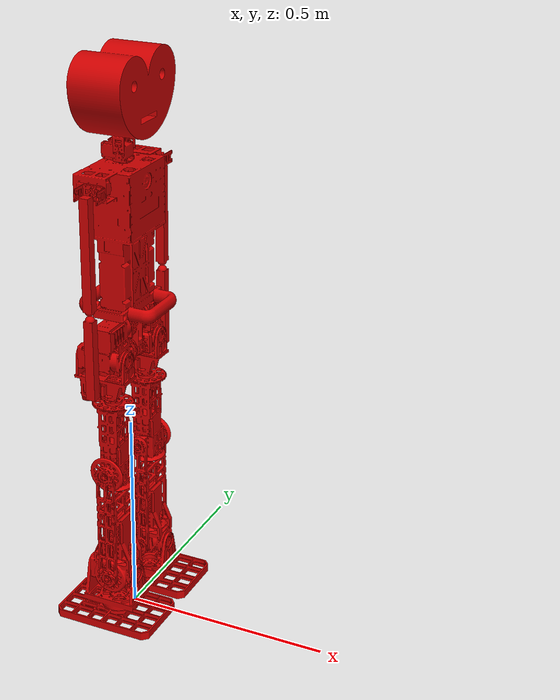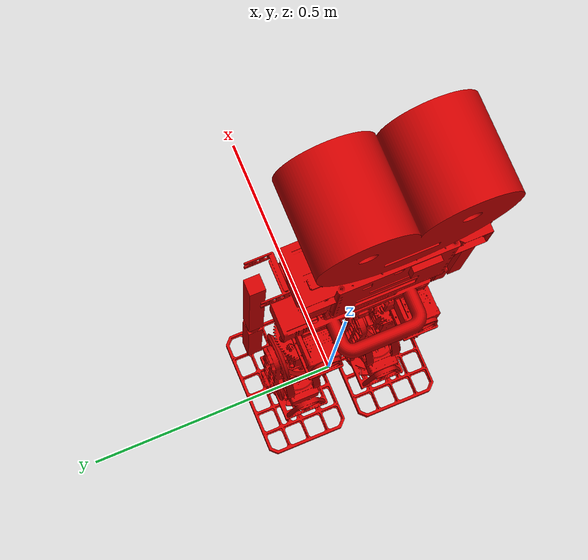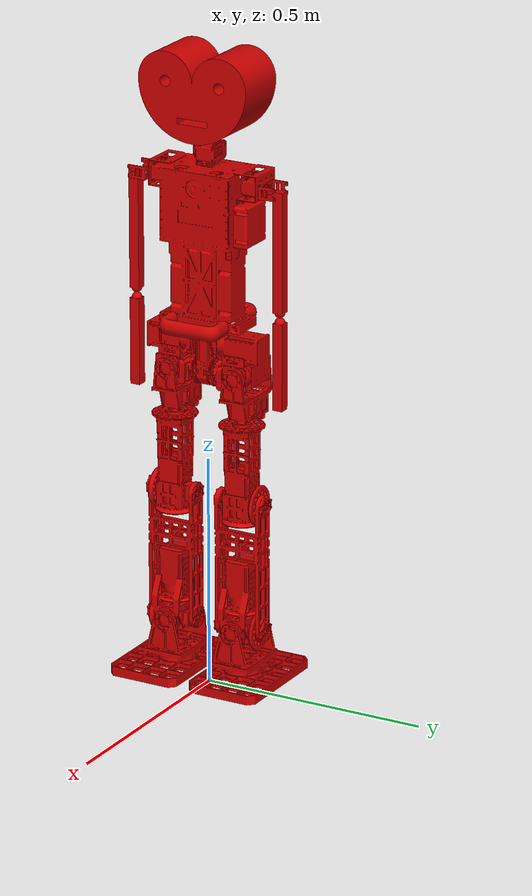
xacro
<?xml version="1.0"?>

<robot name="alice_1_robot" xmlns:xacro="http://www.ros.org/wiki/xacro">

  <xacro:property name="pi" value="3.141592654" />
   <!-- Import all Gazebo-customization elements, including Gazebo colors -->
  <xacro:include filename="$(find alice_1_description)/urdf/soccer_gazebo.gazebo" />
  <xacro:include filename="$(find alice_1_description)/urdf/materials.xacro" />

  <!-- Used for fixing robot -->

  <link name="base">
  </link>

  <joint name="base_fixed" type="fixed">
    <origin xyz="0 0 0.7" rpy="0 0 0"/>
    <parent link="base"/>
    <child link="pelvis_waist"/>
  </joint>

  <!-- pelvis -->

  <link name="pelvis_waist">
    <collision>
      <origin xyz="0 0 0" rpy="0 0 0"/>
      <geometry>
        <box size="0.01 0.01 0.01" />
      </geometry>
    </collision>

    <visual>
        <origin xyz="0 0 0" rpy="0 0 0"/>
        <geometry>
          <mesh filename="package://alice_1_description/meshes/asm_hum_fb_3_main.stl" scale="0.001 0.001 0.001"/>
        </geometry>
        <material name="red"/>
    </visual>

    <inertial>
      <origin xyz="0 0 0" rpy="0 0 0"/>
      <mass value="10"/>
      <inertia ixx="1.0" ixy="0.0" ixz="0.0" iyy="1.0" iyz="0.0" izz="1.0" />
    </inertial>
  </link>

<!-- chest -->
<!-- head -->

<joint name="head_yaw" type="revolute">
    <parent link="pelvis_waist"/>
    <child link="head_yaw_link"/>
    <origin xyz="0 0 0.4435" rpy="0 0 0"/>
    <axis xyz="0 0 1"/>
    <limit velocity="6.5" effort="1000" lower="${-pi/2}" upper="${pi}" />
    <dynamics damping = "0.7"/>
  </joint>

 <transmission name="head_yaw_tran">
     <type>transmission_interface/SimpleTransmission</type>
     <joint name="head_yaw">
       <hardwareInterface>EffortJointInterface</hardwareInterface>
     </joint>
     <actuator name="head_yaw_motor">
       <hardwareInterface>EffortJointInterface</hardwareInterface>
       <mechanicalReduction>1</mechanicalReduction>
     </actuator>
  </transmission>

  <link name="head_yaw_link">
    <collision>
      <origin xyz="0 0 0" rpy="0 0 0"/>
      <geometry>
          <mesh filename="package://alice_1_description/meshes/asm_hum_fb_3_head_y1.stl" scale="0.001 0.001 0.001"/>
        </geometry>
    </collision>

    <visual>
        <origin xyz="0 0 0" rpy="0 0 0"/>
        <geometry>
          <mesh filename="package://alice_1_description/meshes/asm_hum_fb_3_head_y1.stl" scale="0.001 0.001 0.001"/>
        </geometry>
        <material name="red"/>
    </visual>

    <inertial>
      <origin xyz="0 0 0" rpy="0 0 0"/>
      <mass value="0.1"/>
      <inertia ixx="1.0" ixy="0.0" ixz="0.0" iyy="1.0" iyz="0.0" izz="1.0" />
    </inertial>
  </link>

<joint name="head_pitch" type="revolute">
    <parent link="head_yaw_link"/>
    <child link="head_pitch_link"/>
    <origin xyz="0 0 0.023" rpy="0 0 0"/>
    <axis xyz="0 1 0"/>
    <limit velocity="6.5" effort="1000" lower="${-pi/2}" upper="${pi}" />
    <dynamics damping = "0.7"/>
  </joint>

  <transmission name="head_pitch_tran">
     <type>transmission_interface/SimpleTransmission</type>
     <joint name="head_pitch">
       <hardwareInterface>EffortJointInterface</hardwareInterface>
     </joint>
     <actuator name="head_pitch_motor">
       <hardwareInterface>EffortJointInterface</hardwareInterface>
       <mechanicalReduction>1</mechanicalReduction>
     </actuator>
  </transmission>

  <link name="head_pitch_link">
    <collision>
      <origin xyz="0 0 0" rpy="0 0 0"/>
      <geometry>
          <mesh filename="package://alice_1_description/meshes/asm_hum_fb_3_head_p1.stl" scale="0.001 0.001 0.001"/>
        </geometry>
    </collision>

    <visual>
        <origin xyz="0 0 0" rpy="0 0 0"/>
        <geometry>
          <mesh filename="package://alice_1_description/meshes/asm_hum_fb_3_head_p1.stl" scale="0.001 0.001 0.001"/>
        </geometry>
        <material name="red"/>
    </visual>

    <inertial>
      <origin xyz="0 0 0" rpy="0 0 0"/>
      <mass value="0.1"/>
      <inertia ixx="1.0" ixy="0.0" ixz="0.0" iyy="1.0" iyz="0.0" izz="1.0" />
    </inertial>
  </link>
<!-- fake head -->

<joint name="head" type="fixed">
    <parent link="head_pitch_link"/>
    <child link="head_fake_link"/>
    <origin xyz="0 0 0.16" rpy="0 0 0"/>
    <axis xyz="0 1 0"/>
    <limit velocity="6.5" effort="1000" lower="${-pi/2}" upper="${pi}" />
    <dynamics damping = "0.7"/>
  </joint>

  <link name="head_fake_link">
    <collision>
      <origin xyz="0 0 0" rpy="0 0 0"/>
      <geometry>
          <mesh filename="package://alice_1_description/meshes/prt_hum_fb_3_body_fake.stl" scale="0.0005 0.0005 0.0005"/>
        </geometry>
    </collision>

    <visual>
        <origin xyz="0 0 0" rpy="0 0 0"/>
        <geometry>
          <mesh filename="package://alice_1_description/meshes/prt_hum_fb_3_body_fake.stl" scale="0.0005 0.0005 0.0005"/>
        </geometry>
        <material name="red"/>
    </visual>

    <inertial>
      <origin xyz="0 0 0" rpy="0 0 0"/>
      <mass value="0.1"/>
      <inertia ixx="1.0" ixy="0.0" ixz="0.0" iyy="1.0" iyz="0.0" izz="1.0" />
    </inertial>
  </link>

<joint name="camera_zed" type="fixed">
    <parent link="head_fake_link"/>
    <child link="camera_zed_link"/>
    <origin xyz="0.1 0.0 0" rpy="0 0 0"/>
  </joint>

  <link name="camera_zed_link">
    <inertial>
      <origin xyz="0 0 0" rpy="0 0 0"/>
      <mass value="0"/>
      <inertia ixx="1.0" ixy="0.0" ixz="0.0" iyy="1.0" iyz="0.0" izz="1.0" />
    </inertial>
  </link>
<!-- left arm -->
<!-- l_shoulder_pitch -->

  <joint name="l_shoulder_pitch" type="revolute">
    <parent link="pelvis_waist"/>
    <child link="l_shoulder_pitch_link"/>
    <origin xyz="0 0.17 0.4100" rpy="0 0 0"/>
    <axis xyz="0 1 0"/>
    <limit velocity="6.5" effort="1000" lower="${-pi/2}" upper="${pi}" />
    <dynamics damping = "0.7"/>
  </joint>

  <transmission name="l_shoulder_pitch_tran">
     <type>transmission_interface/SimpleTransmission</type>
     <joint name="l_shoulder_pitch">
       <hardwareInterface>EffortJointInterface</hardwareInterface>
     </joint>
     <actuator name="l_shoulder_pitch_motor">
       <hardwareInterface>EffortJointInterface</hardwareInterface>
       <mechanicalReduction>1</mechanicalReduction>
     </actuator>
  </transmission>

  <link name="l_shoulder_pitch_link">
    <collision>
      <origin xyz="0 0 0" rpy="0 0 0"/>
      <geometry>
          <mesh filename="package://alice_1_description/meshes/asm_hum_fb_3_shr_l1.stl" scale="0.001 0.001 0.001"/>
        </geometry>
    </collision>

    <visual>
        <origin xyz="0 0 0" rpy="0 0 0"/>
        <geometry>
          <mesh filename="package://alice_1_description/meshes/asm_hum_fb_3_shr_l1.stl" scale="0.001 0.001 0.001"/>
        </geometry>
        <material name="red"/>
    </visual>

    <inertial>
      <origin xyz="0 0 0" rpy="0 0 0"/>
      <mass value="1"/>
      <inertia ixx="1.0" ixy="0.0" ixz="0.0" iyy="1.0" iyz="0.0" izz="1.0" />
    </inertial>
  </link>

  <joint name="l_shoulder_roll" type="revolute">
    <parent link="l_shoulder_pitch_link"/>
    <child link="l_shoulder_roll_link"/>
    <origin xyz="0 0 0" rpy="0 0 0"/>
    <axis xyz="1 0 0"/>
    <limit velocity="6.5" effort="1000" lower="${-pi/2}" upper="${pi}" />
    <dynamics damping = "0.7"/>
  </joint>

  <transmission name="l_shoulder_roll_tran">
     <type>transmission_interface/SimpleTransmission</type>
     <joint name="l_shoulder_roll">
       <hardwareInterface>EffortJointInterface</hardwareInterface>
     </joint>
     <actuator name="l_shoulder_roll_motor">
       <hardwareInterface>EffortJointInterface</hardwareInterface>
       <mechanicalReduction>1</mechanicalReduction>
     </actuator>
  </transmission>

  <link name="l_shoulder_roll_link">
    <collision>
      <origin xyz="0 0 0" rpy="0 0 0"/>
      <geometry>
          <mesh filename="package://alice_1_description/meshes/prt_hum_fb_3_elbow_l.stl" scale="0.001 0.001 0.001"/>
        </geometry>
    </collision>

    <visual>
        <origin xyz="0 0 0" rpy="0 0 0"/>
        <geometry>
          <mesh filename="package://alice_1_description/meshes/prt_hum_fb_3_elbow_l.stl" scale="0.001 0.001 0.001"/>
        </geometry>
        <material name="red"/>
    </visual>

    <inertial>
      <origin xyz="0 0 0" rpy="0 0 0"/>
      <mass value="1"/>
      <inertia ixx="1.0" ixy="0.0" ixz="0.0" iyy="1.0" iyz="0.0" izz="1.0" />
    </inertial>
  </link>

 <joint name="l_elbow_pitch" type="revolute">
    <parent link="l_shoulder_roll_link"/>
    <child link="l_elbow_pitch_link"/>
    <origin xyz="0 0 -0.27" rpy="0 0 0"/>
    <axis xyz="0 1 0"/>
    <limit velocity="6.5" effort="1000" lower="${-pi/2}" upper="${pi}" />
    <dynamics damping = "0.7"/>
  </joint>

  <transmission name="l_elbow_pitch_tran">
     <type>transmission_interface/SimpleTransmission</type>
     <joint name="l_elbow_pitch">
       <hardwareInterface>EffortJointInterface</hardwareInterface>
     </joint>
     <actuator name="l_elbow_pitch_motor">
       <hardwareInterface>EffortJointInterface</hardwareInterface>
       <mechanicalReduction>1</mechanicalReduction>
     </actuator>
  </transmission>

  <link name="l_elbow_pitch_link">
    <collision>
      <origin xyz="0 0 0" rpy="0 0 0"/>
      <geometry>
          <mesh filename="package://alice_1_description/meshes/prt_hum_fb_3_elbo_2_l.stl" scale="0.001 0.001 0.001"/>
        </geometry>
    </collision>

    <visual>
        <origin xyz="0 0 0" rpy="0 0 0"/>
        <geometry>
          <mesh filename="package://alice_1_description/meshes/prt_hum_fb_3_elbo_2_l.stl" scale="0.001 0.001 0.001"/>
        </geometry>
        <material name="red"/>
    </visual>

    <inertial>
      <origin xyz="0 0 0" rpy="0 0 0"/>
      <mass value="1"/>
      <inertia ixx="1.0" ixy="0.0" ixz="0.0" iyy="1.0" iyz="0.0" izz="1.0" />
    </inertial>
  </link>

<!-- right arm -->
<!-- r_shoulder_pitch -->

 <joint name="r_shoulder_pitch" type="revolute">
    <parent link="pelvis_waist"/>
    <child link="r_shoulder_pitch_link"/>
    <origin xyz="0 -0.17 0.4100" rpy="0 0 0"/>
    <axis xyz="0 -1 0"/>
    <limit velocity="6.5" effort="1000" lower="${-pi/2}" upper="${pi}" />
    <dynamics damping = "0.7"/>
  </joint>

  <transmission name="r_shoulder_pitch_tran">
     <type>transmission_interface/SimpleTransmission</type>
     <joint name="r_shoulder_pitch">
       <hardwareInterface>EffortJointInterface</hardwareInterface>
     </joint>
     <actuator name="r_shoulder_pitch_motor">
       <hardwareInterface>EffortJointInterface</hardwareInterface>
       <mechanicalReduction>1</mechanicalReduction>
     </actuator>
  </transmission>

  <link name="r_shoulder_pitch_link">
    <collision>
      <origin xyz="0 0 0" rpy="0 0 0"/>
      <geometry>
          <mesh filename="package://alice_1_description/meshes/asm_hum_fb_3_shr_r1.stl" scale="0.001 0.001 0.001"/>
        </geometry>
    </collision>

    <visual>
        <origin xyz="0 0 0" rpy="0 0 0"/>
        <geometry>
          <mesh filename="package://alice_1_description/meshes/asm_hum_fb_3_shr_r1.stl" scale="0.001 0.001 0.001"/>
        </geometry>
        <material name="red"/>
    </visual>

    <inertial>
      <origin xyz="0 0 0" rpy="0 0 0"/>
      <mass value="1"/>
      <inertia ixx="1.0" ixy="0.0" ixz="0.0" iyy="1.0" iyz="0.0" izz="1.0" />
    </inertial>
  </link>

 <joint name="r_shoulder_roll" type="revolute">
    <parent link="r_shoulder_pitch_link"/>
    <child link="r_shoulder_roll_link"/>
    <origin xyz="0 0 0" rpy="0 0 0"/>
    <axis xyz="1 0 0"/>
    <limit velocity="6.5" effort="1000" lower="${-pi/2}" upper="${pi}" />
    <dynamics damping = "0.7"/>
  </joint>

  <transmission name="r_shoulder_roll_tran">
     <type>transmission_interface/SimpleTransmission</type>
     <joint name="r_shoulder_roll">
       <hardwareInterface>EffortJointInterface</hardwareInterface>
     </joint>
     <actuator name="r_shoulder_roll_motor">
       <hardwareInterface>EffortJointInterface</hardwareInterface>
       <mechanicalReduction>1</mechanicalReduction>
     </actuator>
  </transmission>

  <link name="r_shoulder_roll_link">
    <collision>
      <origin xyz="0 0 0" rpy="0 0 0"/>
      <geometry>
          <mesh filename="package://alice_1_description/meshes/prt_hum_fb_3_elbow_l.stl" scale="0.001 0.001 0.001"/>
        </geometry>
    </collision>

    <visual>
        <origin xyz="0 0 0" rpy="0 0 0"/>
        <geometry>
          <mesh filename="package://alice_1_description/meshes/prt_hum_fb_3_elbow_l.stl" scale="0.001 0.001 0.001"/>
        </geometry>
        <material name="red"/>
    </visual>

    <inertial>
      <origin xyz="0 0 0" rpy="0 0 0"/>
      <mass value="1"/>
      <inertia ixx="1.0" ixy="0.0" ixz="0.0" iyy="1.0" iyz="0.0" izz="1.0" />
    </inertial>
  </link>

 <joint name="r_elbow_pitch" type="revolute">
    <parent link="r_shoulder_roll_link"/>
    <child link="r_elbow_pitch_link"/>
    <origin xyz="0 0 -0.27" rpy="0 0 0"/>
    <axis xyz="0 -1 0"/>
    <limit velocity="6.5" effort="1000" lower="${-pi/2}" upper="${pi}" />
    <dynamics damping = "0.7"/>
  </joint>

  <transmission name="r_elbow_pitch_tran">
     <type>transmission_interface/SimpleTransmission</type>
     <joint name="r_elbow_pitch">
       <hardwareInterface>EffortJointInterface</hardwareInterface>
     </joint>
     <actuator name="r_elbow_pitch_motor">
       <hardwareInterface>EffortJointInterface</hardwareInterface>
       <mechanicalReduction>1</mechanicalReduction>
     </actuator>
  </transmission>

  <link name="r_elbow_pitch_link">
    <collision>
      <origin xyz="0 0 0" rpy="0 0 0"/>
      <geometry>
          <mesh filename="package://alice_1_description/meshes/prt_hum_fb_3_elbo_2_l.stl" scale="0.001 0.001 0.001"/>
        </geometry>
    </collision>

    <visual>
        <origin xyz="0 0 0" rpy="0 0 0"/>
        <geometry>
          <mesh filename="package://alice_1_description/meshes/prt_hum_fb_3_elbo_2_l.stl" scale="0.001 0.001 0.001"/>
        </geometry>
        <material name="red"/>
    </visual>

    <inertial>
      <origin xyz="0 0 0" rpy="0 0 0"/>
      <mass value="1"/>
      <inertia ixx="1.0" ixy="0.0" ixz="0.0" iyy="1.0" iyz="0.0" izz="1.0" />
    </inertial>
  </link>

<!-- left_leg -->

  <joint name="l_hip_pitch" type="revolute">
    <parent link="pelvis_waist"/>
    <child link="l_hip_pitch_link"/>
    <origin xyz="0 0.021 0" rpy="0 0 0"/>
    <axis xyz="0 -1 0"/>
    <limit velocity="6.5" effort="1000" lower="${-pi/2}" upper="${pi}" />
    <dynamics damping = "0.7"/>
  </joint>

  <transmission name="l_hip_pitch_tran">
     <type>transmission_interface/SimpleTransmission</type>
     <joint name="l_hip_pitch">
       <hardwareInterface>EffortJointInterface</hardwareInterface>
     </joint>
     <actuator name="l_hip_pitch_motor">
       <hardwareInterface>EffortJointInterface</hardwareInterface>
       <mechanicalReduction>1</mechanicalReduction>
     </actuator>
  </transmission>

  <link name="l_hip_pitch_link">
    <collision>
      <origin xyz="0 0 0" rpy="0 0 0"/>
      <geometry>
          <mesh filename="package://alice_1_description/meshes/asm_hum_fb_3_pelvis_l_p1.stl" scale="0.001 0.001 0.001"/>
        </geometry>
    </collision>

    <visual>
        <origin xyz="0 0 0" rpy="0 0 0"/>
        <geometry>
          <mesh filename="package://alice_1_description/meshes/asm_hum_fb_3_pelvis_l_p1.stl" scale="0.001 0.001 0.001"/>
        </geometry>
        <material name="red"/>
    </visual>

    <inertial>
      <origin xyz="0 0 0" rpy="0 0 0"/>
      <mass value="1"/>
      <inertia ixx="1.0" ixy="0.0" ixz="0.0" iyy="1.0" iyz="0.0" izz="1.0" />
    </inertial>
  </link>

  <joint name="l_hip_roll" type="revolute">
    <parent link="l_hip_pitch_link"/>
    <child link="l_hip_roll_link"/>
    <origin xyz="0 0.059 0" rpy="0 0 0"/>
    <axis xyz="1 0 0"/>
    <limit velocity="6.5" effort="1000" lower="${-pi/2}" upper="${pi}" />
    <dynamics damping = "0.7"/>
  </joint>

  <transmission name="l_hip_roll_tran">
     <type>transmission_interface/SimpleTransmission</type>
     <joint name="l_hip_roll">
       <hardwareInterface>EffortJointInterface</hardwareInterface>
     </joint>
     <actuator name="l_hip_roll_motor">
       <hardwareInterface>EffortJointInterface</hardwareInterface>
       <mechanicalReduction>1</mechanicalReduction>
     </actuator>
  </transmission>

   <link name="l_hip_roll_link">
    <collision>
      <origin xyz="0 0 0" rpy="0 0 0"/>
      <geometry>
          <mesh filename="package://alice_1_description/meshes/asm_hum_fb_3_pelvis_l_r1.stl" scale="0.001 0.001 0.001"/>
        </geometry>
    </collision>

    <visual>
        <origin xyz="0 0 0" rpy="0 0 0"/>
        <geometry>
          <mesh filename="package://alice_1_description/meshes/asm_hum_fb_3_pelvis_l_r1.stl" scale="0.001 0.001 0.001"/>
        </geometry>
        <material name="red"/>
    </visual>

    <inertial>
      <origin xyz="0 0 0" rpy="0 0 0"/>
      <mass value="1"/>
      <inertia ixx="1.0" ixy="0.0" ixz="0.0" iyy="1.0" iyz="0.0" izz="1.0" />
    </inertial>
  </link>

  <joint name="l_hip_yaw" type="revolute">
    <parent link="l_hip_roll_link"/>
    <child link="l_hip_yaw_link"/>
    <origin xyz="0 0 -0.110" rpy="0 0 0"/>
    <axis xyz="0 0 1"/>
    <limit velocity="6.5" effort="1000" lower="${-pi/2}" upper="${pi}" />
    <dynamics damping = "0.7"/>
  </joint>

    <transmission name="l_hip_yaw_tran">
     <type>transmission_interface/SimpleTransmission</type>
     <joint name="l_hip_yaw">
       <hardwareInterface>EffortJointInterface</hardwareInterface>
     </joint>
     <actuator name="l_hip_yaw">
       <hardwareInterface>EffortJointInterface</hardwareInterface>
       <mechanicalReduction>1</mechanicalReduction>
     </actuator>
  </transmission>

   <link name="l_hip_yaw_link">
    <collision>
      <origin xyz="0 0 0" rpy="0 0 0"/>
      <geometry>
          <mesh filename="package://alice_1_description/meshes/asm_hum_fb_3_pelvis_l_y1.stl" scale="0.001 0.001 0.001"/>
        </geometry>
    </collision>

    <visual>
        <origin xyz="0 0 0" rpy="0 0 0"/>
        <geometry>
          <mesh filename="package://alice_1_description/meshes/asm_hum_fb_3_pelvis_l_y1.stl" scale="0.001 0.001 0.001"/>
        </geometry>
        <material name="red"/>
    </visual>

    <inertial>
      <origin xyz="0 0 0" rpy="0 0 0"/>
      <mass value="1"/>
      <inertia ixx="1.0" ixy="0.0" ixz="0.0" iyy="1.0" iyz="0.0" izz="1.0" />
    </inertial>
  </link>

  <joint name="l_knee_pitch" type="revolute">
    <parent link="l_hip_yaw_link"/>
    <child link="l_knee_pitch_link"/>
    <origin xyz="0 0 -0.170" rpy="0 0 0"/>
    <axis xyz="0 -1 0"/>
    <limit velocity="6.5" effort="1000" lower="${-pi/2}" upper="${pi}" />
    <dynamics damping = "0.7"/>
  </joint>

   <transmission name="l_knee_pitch_tran">
     <type>transmission_interface/SimpleTransmission</type>
     <joint name="l_knee_pitch">
       <hardwareInterface>EffortJointInterface</hardwareInterface>
     </joint>
     <actuator name="l_knee_pitch_motor">
       <hardwareInterface>EffortJointInterface</hardwareInterface>
       <mechanicalReduction>1</mechanicalReduction>
     </actuator>
  </transmission>

   <link name="l_knee_pitch_link">
    <collision>
      <origin xyz="0 0 0" rpy="0 0 0"/>
      <geometry>
          <mesh filename="package://alice_1_description/meshes/asm_hum_fb_3_leg_l_p1.stl" scale="0.001 0.001 0.001"/>
        </geometry>
    </collision>

    <visual>
        <origin xyz="0 0 0" rpy="0 0 0"/>
        <geometry>
          <mesh filename="package://alice_1_description/meshes/asm_hum_fb_3_leg_l_p1.stl" scale="0.001 0.001 0.001"/>
        </geometry>
        <material name="red"/>
    </visual>

    <inertial>
      <origin xyz="0 0 0" rpy="0 0 0"/>
      <mass value="1"/>
      <inertia ixx="1.0" ixy="0.0" ixz="0.0" iyy="1.0" iyz="0.0" izz="1.0" />
    </inertial>
  </link>

  <joint name="l_ankle_pitch" type="revolute">
    <parent link="l_knee_pitch_link"/>
    <child link="l_ankle_pitch_link"/>
    <origin xyz="0 0 -0.28" rpy="0 0 0"/>
    <axis xyz="0 -1 0"/>
    <limit velocity="6.5" effort="1000" lower="${-pi/2}" upper="${pi}" />
    <dynamics damping = "0.7"/>
  </joint>

  <transmission name="l_ankle_pitch_tran">
     <type>transmission_interface/SimpleTransmission</type>
     <joint name="l_ankle_pitch">
       <hardwareInterface>EffortJointInterface</hardwareInterface>
     </joint>
     <actuator name="l_ankle_pitch_motor">
       <hardwareInterface>EffortJointInterface</hardwareInterface>
       <mechanicalReduction>1</mechanicalReduction>
     </actuator>
  </transmission>

   <link name="l_ankle_pitch_link">
    <collision>
      <origin xyz="0 0 0" rpy="0 0 0"/>
      <geometry>
          <mesh filename="package://alice_1_description/meshes/asm_hum_fb_3_ank_l_p1.stl" scale="0.001 0.001 0.001"/>
        </geometry>
    </collision>

    <visual>
        <origin xyz="0 0 0" rpy="0 0 0"/>
        <geometry>
          <mesh filename="package://alice_1_description/meshes/asm_hum_fb_3_ank_l_p1.stl" scale="0.001 0.001 0.001"/>
        </geometry>
        <material name="red"/>
    </visual>

    <inertial>
      <origin xyz="0 0 0" rpy="0 0 0"/>
      <mass value="1"/>
      <inertia ixx="1.0" ixy="0.0" ixz="0.0" iyy="1.0" iyz="0.0" izz="1.0" />
    </inertial>
  </link>

  <joint name="l_ankle_roll" type="revolute">
    <parent link="l_ankle_pitch_link"/>
    <child link="l_ankle_roll_link"/>
    <origin xyz="0 0 0" rpy="0 0 0"/>
    <axis xyz="1 0 0"/>
    <limit velocity="6.5" effort="1000" lower="${-pi/2}" upper="${pi}" />
    <dynamics damping = "0.7"/>
  </joint>

  <transmission name="l_ankle_roll_tran">
     <type>transmission_interface/SimpleTransmission</type>
     <joint name="l_ankle_roll">
       <hardwareInterface>EffortJointInterface</hardwareInterface>
     </joint>
     <actuator name="l_ankle_roll_motor">
       <hardwareInterface>EffortJointInterface</hardwareInterface>
       <mechanicalReduction>1</mechanicalReduction>
     </actuator>
  </transmission>

   <link name="l_ankle_roll_link">
    <collision>
      <origin xyz="0 0 0" rpy="0 0 0"/>
       <geometry>
          <mesh filename="package://alice_1_description/meshes/asm_hum_fb_3_ank_l_r1.stl" scale="0.001 0.001 0.001"/>
        </geometry>

       <surface>
        <friction>
          <ode>
            <mu>100</mu>
            <mu2>50</mu2>
          </ode>
        </friction>
      </surface>
    </collision>

    <visual>
        <origin xyz="0 0 0" rpy="0 0 0"/>
        <geometry>
          <mesh filename="package://alice_1_description/meshes/asm_hum_fb_3_ank_l_r1.stl" scale="0.001 0.001 0.001"/>
        </geometry>
        <material name="red"/>
    </visual>

    <inertial>
      <origin xyz="0 0 0" rpy="0 0 0"/>
      <mass value="10"/>
      <inertia ixx="1.0" ixy="0.0" ixz="0.0" iyy="1.0" iyz="0.0" izz="1.0" />
    </inertial>
  </link>

<!-- right -->

  <joint name="r_hip_pitch" type="revolute">
    <parent link="pelvis_waist"/>
    <child link="r_hip_pitch_link"/>
    <origin xyz="0 -0.021 0" rpy="0 0 0"/>
    <axis xyz="0 1 0"/>
    <limit velocity="6.5" effort="1000" lower="${-pi/2}" upper="${pi}" />
    <dynamics damping = "0.7"/>
  </joint>

    <transmission name="r_hip_pitch_tran">
     <type>transmission_interface/SimpleTransmission</type>
     <joint name="r_hip_pitch">
       <hardwareInterface>EffortJointInterface</hardwareInterface>
     </joint>
     <actuator name="r_hip_pitch_motor">
       <hardwareInterface>EffortJointInterface</hardwareInterface>
       <mechanicalReduction>1</mechanicalReduction>
     </actuator>
  </transmission>

  <link name="r_hip_pitch_link">
    <collision>
      <origin xyz="0 0 0" rpy="0 0 0"/>
      <geometry>
          <mesh filename="package://alice_1_description/meshes/asm_hum_fb_3_pelvis_r_p1.stl" scale="0.001 0.001 0.001"/>
        </geometry>
    </collision>

    <visual>
        <origin xyz="0 0 0" rpy="0 0 0"/>
        <geometry>
          <mesh filename="package://alice_1_description/meshes/asm_hum_fb_3_pelvis_r_p1.stl" scale="0.001 0.001 0.001"/>
        </geometry>
        <material name="red"/>
    </visual>

    <inertial>
      <origin xyz="0 0 0" rpy="0 0 0"/>
      <mass value="1"/>
      <inertia ixx="1.0" ixy="0.0" ixz="0.0" iyy="1.0" iyz="0.0" izz="1.0" />
    </inertial>
  </link>

  <joint name="r_hip_roll" type="revolute">
    <parent link="r_hip_pitch_link"/>
    <child link="r_hip_roll_link"/>
    <origin xyz="0 -0.059 0" rpy="0 0 0"/>
    <axis xyz="1 0 0"/>
    <limit velocity="6.5" effort="1000" lower="${-pi/2}" upper="${pi}" />
    <dynamics damping = "0.7"/>
  </joint>

  <transmission name="r_hip_roll_tran">
     <type>transmission_interface/SimpleTransmission</type>
     <joint name="r_hip_roll">
       <hardwareInterface>EffortJointInterface</hardwareInterface>
     </joint>
     <actuator name="r_hip_roll_motor">
       <hardwareInterface>EffortJointInterface</hardwareInterface>
       <mechanicalReduction>1</mechanicalReduction>
     </actuator>
  </transmission>

   <link name="r_hip_roll_link">
    <collision>
      <origin xyz="0 0 0" rpy="0 0 0"/>
      <geometry>
          <mesh filename="package://alice_1_description/meshes/asm_hum_fb_3_pelvis_r_r1.stl" scale="0.001 0.001 0.001"/>
        </geometry>
    </collision>

    <visual>
        <origin xyz="0 0 0" rpy="0 0 0"/>
        <geometry>
          <mesh filename="package://alice_1_description/meshes/asm_hum_fb_3_pelvis_r_r1.stl" scale="0.001 0.001 0.001"/>
        </geometry>
        <material name="red"/>
    </visual>

    <inertial>
      <origin xyz="0 0 0" rpy="0 0 0"/>
      <mass value="1"/>
      <inertia ixx="1.0" ixy="0.0" ixz="0.0" iyy="1.0" iyz="0.0" izz="1.0" />
    </inertial>
  </link>

  <joint name="r_hip_yaw" type="revolute">
    <parent link="r_hip_roll_link"/>
    <child link="r_hip_yaw_link"/>
    <origin xyz="0 0 -0.110" rpy="0 0 0"/>
    <axis xyz="0 0 1"/>
    <limit velocity="6.5" effort="1000" lower="${-pi/2}" upper="${pi}" />
    <dynamics damping = "0.7"/>
  </joint>

  <transmission name="r_hip_yaw_tran">
     <type>transmission_interface/SimpleTransmission</type>
     <joint name="r_hip_yaw">
       <hardwareInterface>EffortJointInterface</hardwareInterface>
     </joint>
     <actuator name="r_hip_yaw_motor">
       <hardwareInterface>EffortJointInterface</hardwareInterface>
       <mechanicalReduction>1</mechanicalReduction>
     </actuator>
  </transmission>

   <link name="r_hip_yaw_link">
    <collision>
      <origin xyz="0 0 0" rpy="0 0 0"/>
      <geometry>
          <mesh filename="package://alice_1_description/meshes/asm_hum_fb_3_pelvis_r_y1.stl" scale="0.001 0.001 0.001"/>
        </geometry>
    </collision>

    <visual>
        <origin xyz="0 0 0" rpy="0 0 0"/>
        <geometry>
          <mesh filename="package://alice_1_description/meshes/asm_hum_fb_3_pelvis_r_y1.stl" scale="0.001 0.001 0.001"/>
        </geometry>
        <material name="red"/>
    </visual>

    <inertial>
      <origin xyz="0 0 0" rpy="0 0 0"/>
      <mass value="1"/>
      <inertia ixx="1.0" ixy="0.0" ixz="0.0" iyy="1.0" iyz="0.0" izz="1.0" />
    </inertial>
  </link>

  <joint name="r_knee_pitch" type="revolute">
    <parent link="r_hip_yaw_link"/>
    <child link="r_knee_pitch_link"/>
    <origin xyz="0 0 -0.17" rpy="0 0 0"/>
    <axis xyz="0 1 0"/>
    <limit velocity="6.5" effort="1000" lower="${-pi/2}" upper="${pi}" />
    <dynamics damping = "0.7"/>
  </joint>

   <transmission name="r_knee_pitch_tran">
     <type>transmission_interface/SimpleTransmission</type>
     <joint name="r_knee_pitch">
       <hardwareInterface>EffortJointInterface</hardwareInterface>
     </joint>
     <actuator name="r_knee_pitch_motor">
       <hardwareInterface>EffortJointInterface</hardwareInterface>
       <mechanicalReduction>1</mechanicalReduction>
     </actuator>
  </transmission>

   <link name="r_knee_pitch_link">
    <collision>
      <origin xyz="0 0 0" rpy="0 0 0"/>
      <geometry>
          <mesh filename="package://alice_1_description/meshes/asm_hum_fb_3_leg_r_p1.stl" scale="0.001 0.001 0.001"/>
        </geometry>
    </collision>

    <visual>
        <origin xyz="0 0 0" rpy="0 0 0"/>
        <geometry>
          <mesh filename="package://alice_1_description/meshes/asm_hum_fb_3_leg_r_p1.stl" scale="0.001 0.001 0.001"/>
        </geometry>
        <material name="red"/>
    </visual>

    <inertial>
      <origin xyz="0 0 0" rpy="0 0 0"/>
      <mass value="1"/>
      <inertia ixx="1.0" ixy="0.0" ixz="0.0" iyy="1.0" iyz="0.0" izz="1.0" />
    </inertial>
  </link>

  <joint name="r_ankle_pitch" type="revolute">
    <parent link="r_knee_pitch_link"/>
    <child link="r_ankle_pitch_link"/>
    <origin xyz="0 0 -0.28" rpy="0 0 0"/>
    <axis xyz="0 1 0"/>
    <limit velocity="6.5" effort="1000" lower="${-pi/2}" upper="${pi}" />
    <dynamics damping = "0.7"/>
  </joint>

  <transmission name="r_ankle_pitch_tran">
     <type>transmission_interface/SimpleTransmission</type>
     <joint name="r_ankle_pitch">
       <hardwareInterface>EffortJointInterface</hardwareInterface>
     </joint>
     <actuator name="r_ankle_pitch_motor">
       <hardwareInterface>EffortJointInterface</hardwareInterface>
       <mechanicalReduction>1</mechanicalReduction>
     </actuator>
  </transmission>

   <link name="r_ankle_pitch_link">
    <collision>
      <origin xyz="0 0 0" rpy="0 0 0"/>
      <geometry>
          <mesh filename="package://alice_1_description/meshes/asm_hum_fb_3_ank_r_p1.stl" scale="0.001 0.001 0.001"/>
        </geometry>
    </collision>

    <visual>
        <origin xyz="0 0 0" rpy="0 0 0"/>
        <geometry>
          <mesh filename="package://alice_1_description/meshes/asm_hum_fb_3_ank_r_p1.stl" scale="0.001 0.001 0.001"/>
        </geometry>
        <material name="red"/>
    </visual>

    <inertial>
      <origin xyz="0 0 0" rpy="0 0 0"/>
      <mass value="1"/>
      <inertia ixx="1.0" ixy="0.0" ixz="0.0" iyy="1.0" iyz="0.0" izz="1.0" />
    </inertial>
  </link>

  <joint name="r_ankle_roll" type="revolute">
    <parent link="r_ankle_pitch_link"/>
    <child link="r_ankle_roll_link"/>
    <origin xyz="0 0 0" rpy="0 0 0"/>
    <axis xyz="1 0 0"/>
    <limit velocity="6.5" effort="1000" lower="${-pi/2}" upper="${pi/2}" />
    <dynamics damping = "0.7"/>
  </joint>

    <transmission name="r_ankle_roll_tran">
     <type>transmission_interface/SimpleTransmission</type>
     <joint name="r_ankle_roll">
       <hardwareInterface>EffortJointInterface</hardwareInterface>
     </joint>
     <actuator name="r_ankle_roll_motor">
       <hardwareInterface>EffortJointInterface</hardwareInterface>
       <mechanicalReduction>1</mechanicalReduction>
     </actuator>
  </transmission>

   <link name="r_ankle_roll_link">
    <collision>
      <origin xyz="0 0 0" rpy="0 0 0"/>
       <geometry>
          <mesh filename="package://alice_1_description/meshes/asm_hum_fb_3_ank_r_r1.stl" scale="0.001 0.001 0.001"/>
        </geometry>
    <surface>
        <friction>
          <ode>
            <mu>100</mu>
            <mu2>50</mu2>
          </ode>
        </friction>
      </surface>
    </collision>

    <visual>
        <origin xyz="0 0 0" rpy="0 0 0"/>
        <geometry>
          <mesh filename="package://alice_1_description/meshes/asm_hum_fb_3_ank_r_r1.stl" scale="0.001 0.001 0.001"/>
        </geometry>
        <material name="red"/>
    </visual>

    <inertial>
      <origin xyz="0 0 0" rpy="0 0 0"/>
      <mass value="10"/>
      <inertia ixx="1.0" ixy="0.0" ixz="0.0" iyy="1.0" iyz="0.0" izz="1.0" />
    </inertial>
  </link>

  <joint name="imu_fixed" type="fixed">
    <parent link="pelvis_waist"/>
    <child link="imu_link_1"/>
    <origin xyz="0 0 0" rpy="0 0 -1.57079632679"/>
  </joint>

  <link name="imu_link_1">
    <collision>
      <origin xyz="0 0 0" rpy="0 0 0"/>
      <geometry>
        <box size="0.01 0.01 0.01" />
      </geometry>
    </collision>
    <inertial>
      <origin xyz="0 0 0" rpy="0 0 0"/>
      <mass value="0.1"/>
      <inertia ixx="1.0" ixy="0.0" ixz="0.0" iyy="1.0" iyz="0.0" izz="1.0" />
    </inertial>
  </link>

  <joint name="imu_fixed_1" type="fixed">
    <parent link="imu_link_1"/>
    <child link="imu_link_2"/>
    <origin xyz="0 0 0" rpy="0 3.1415926535 0"/>
  </joint>

   <link name="imu_link_2">
    <inertial>
      <origin xyz="0 0 0" rpy="0 0 0"/>
      <mass value="0.1"/>
      <inertia ixx="1.0" ixy="0.0" ixz="0.0" iyy="1.0" iyz="0.0" izz="1.0" />
    </inertial>
   </link>

</robot>

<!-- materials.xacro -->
<robot>

  <material name="red">
    <color rgba="0.8 0.0 0.0 1.0"/>
  </material>

   <material name="blue">
    <color rgba="0.0 0.0 0.8 1.0"/>
  </material>

  <material name="green">
    <color rgba="0.0 0.8 0.0 1.0"/>
  </material>

  <material name="grey">
    <color rgba="0.2 0.2 0.2 1.0"/>
  </material>

  <material name="orange">
    <color rgba="${255/255} ${108/255} ${10/255} 1.0"/>
  </material>

  <material name="brown">
    <color rgba="${222/255} ${207/255} ${195/255} 1.0"/>
  </material>

  <material name="white">
    <color rgba="1.0 1.0 1.0 1.0"/>
  </material>

</robot>
